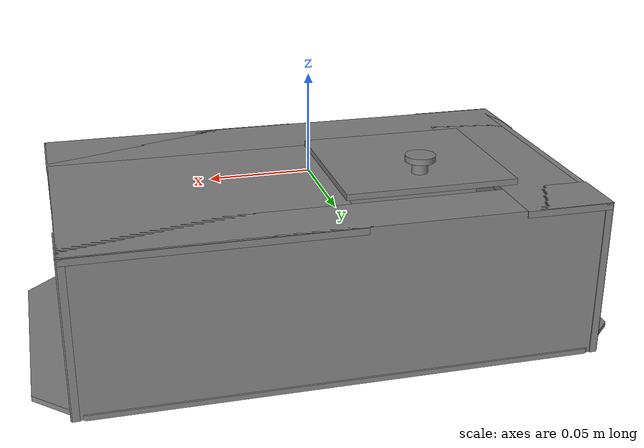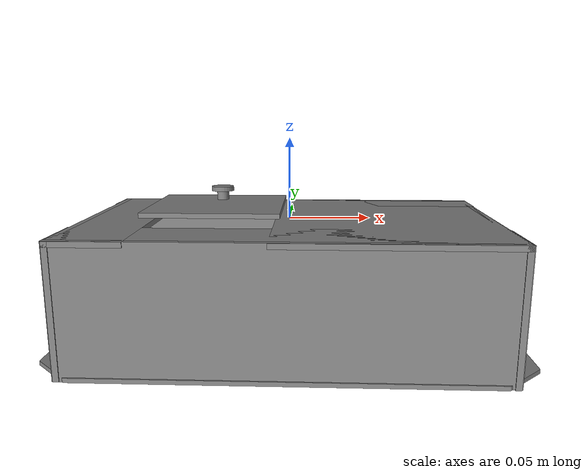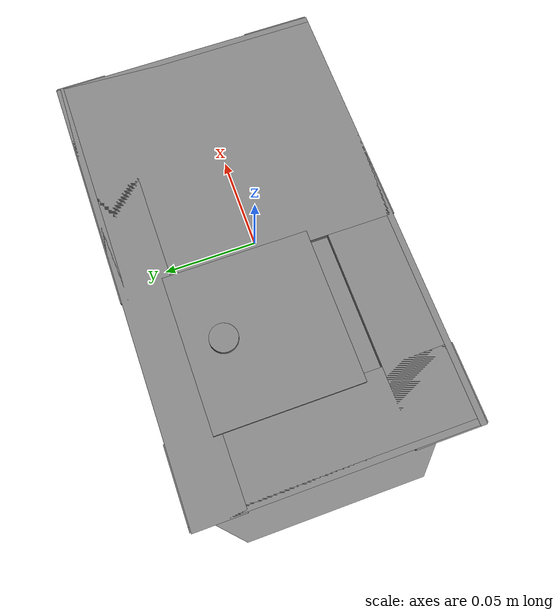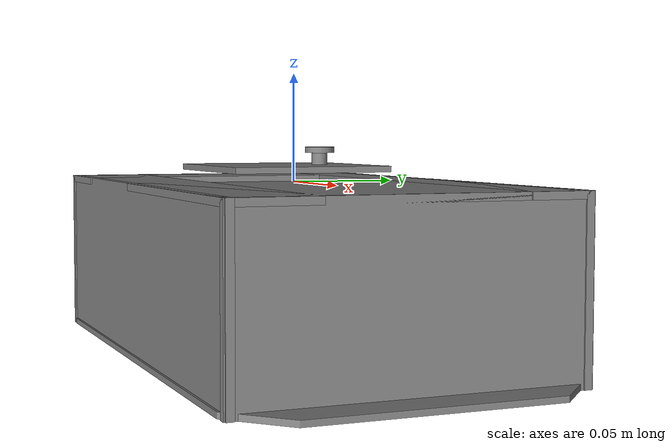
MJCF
<mujoco model="task_board">
    <compiler angle="radian" meshdir="task_board/stl/" autolimits="true" balanceinertia="true" discardvisual="true" boundmass="0.000001" boundinertia="0.000001"/>
    <asset>
        <mesh name="ShellBottom" file="ShellBottom.stl"/>
    </asset>
    <worldbody>
        <body name="task_board">
            <freejoint/>
            <geom type="mesh" mesh="ShellBottom"/>
            <geom size="0.128275 0.0018 0.039751" pos="0 0.075039 -0.039751" type="box"/>
            <geom size="0.128275 0.0018 0.039751" pos="0 -0.075039 -0.039751" type="box"/>
            <geom size="0.001757 0.077475 0.039751" pos="0.125881 0 -0.039751" type="box"/>
            <geom size="0.001757 0.077475 0.039751" pos="-0.125881 0 -0.039751" type="box"/>
            <geom size="0.128275 0.019095 0.001651" pos="0 -0.057742 -0.001651" type="box"/>
            <geom size="0.128275 0.014242 0.001651" pos="0 0.062595 -0.001651" type="box"/>
            <geom size="0.068111 0.077475 0.001651" pos="0.059527 0 -0.001651" type="box"/>
            <geom size="0.021527 0.077475 0.001651" pos="-0.10611 0 -0.001651" type="box"/>
            <body name="lid" pos="-0.047251 -0.032897 -0.000802">
                <joint name="lid_joint" pos="0 0 0" axis="1 0 0" range="0 6.28"/>
                <geom size="0.042501 0.04 0.0015" pos="0 0.045753 0.005981" type="box"/>
                <geom size="0.004 0.003" pos="0 0.065755 0.010466" type="cylinder"/>
                <geom size="0.007486 0.0015" pos="0 0.065755 0.014967" type="cylinder"/>
            </body>
        </body>
    </worldbody>
    <equality/>
</mujoco>
